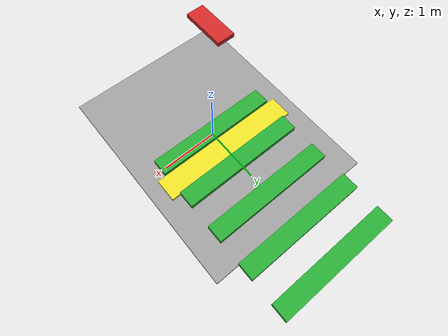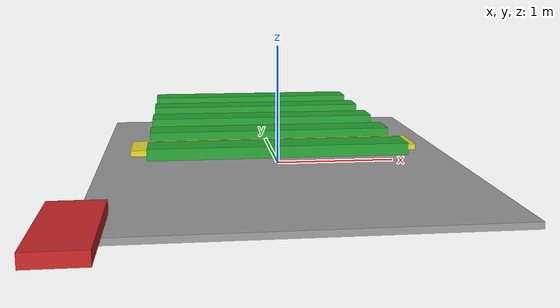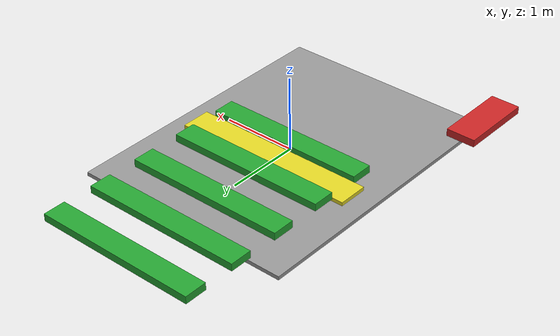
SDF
<?xml version="1.0"?>
<sdf version="1.7">
  <model name="field_model">
    <!-- 声明为静态模型，避免物理引擎计算，提高性能 -->
    <static>true</static>

    <!-- 1. 地面基底（灰色，作为整个场地的基础） -->
    <link name="ground">
      <pose>0 0 0 0 0 0</pose>  <!-- 位于坐标原点，z=0 贴合地面 -->
      <visual name="ground_visual">
        <geometry>
          <box>
            <size>3.0 3.9 0.05</size>
          </box>
        </geometry>
        <material>
          <script>
            <uri>file://media/materials/scripts/gazebo.material</uri>
            <name>Gazebo/Grey</name>  <!-- 浅灰色地面 -->
          </script>
        </material>
      </visual>
      <collision name="ground_collision">
        <geometry>
          <box>
            <size>3.0 3.9 0.05</size>  <!-- 碰撞体尺寸与视觉一致 -->
          </box>
        </geometry>
      </collision>
    </link>

    <!-- 2. 垄背（绿色，共5条，间距0.7m） -->
    <!-- 垄背1 -->
    <link name="ridge_1">
      <pose>0 0 0.125 0 0 0</pose>  <!-- z=0.125m，高于地面0.125m（地面厚0.05m + 悬空0.075m） -->
      <visual name="ridge_1_visual">
        <geometry>
          <box>
            <size>2.2 0.3 0.1</size>
          </box>
        </geometry>
        <material>
          <script>
            <uri>file://media/materials/scripts/gazebo.material</uri>
            <name>Gazebo/Green</name>  <!-- 绿色垄背 -->
          </script>
        </material>
      </visual>
      <collision name="ridge_1_collision">
        <geometry>
          <box>
            <size>2.2 0.3 0.1</size>  <!-- 碰撞体与视觉尺寸一致 -->
          </box>
        </geometry>
      </collision>
    </link>

    <!-- 垄背2（y方向偏移0.7m：垄背宽0.3m + 垄沟宽0.4m） -->
    <link name="ridge_2">
      <pose>0 0.7 0.125 0 0 0</pose>
      <visual name="ridge_2_visual">
        <geometry><box><size>2.2 0.3 0.1</size></box></geometry>
        <material><script><uri>file://media/materials/scripts/gazebo.material</uri><name>Gazebo/Green</name></script></material>
      </visual>
      <collision name="ridge_2_collision">
        <geometry><box><size>2.2 0.3 0.1</size></box></geometry>
      </collision>
    </link>

    <!-- 垄背3（y=0.7+0.7=1.4m） -->
    <link name="ridge_3">
      <pose>0 1.4 0.125 0 0 0</pose>
      <visual name="ridge_3_visual">
        <geometry><box><size>2.2 0.3 0.1</size></box></geometry>
        <material><script><uri>file://media/materials/scripts/gazebo.material</uri><name>Gazebo/Green</name></script></material>
      </visual>
      <collision name="ridge_3_collision">
        <geometry><box><size>2.2 0.3 0.1</size></box></geometry>
      </collision>
    </link>

    <!-- 垄背4（y=1.4+0.7=2.1m） -->
    <link name="ridge_4">
      <pose>0 2.1 0.125 0 0 0</pose>
      <visual name="ridge_4_visual">
        <geometry><box><size>2.2 0.3 0.1</size></box></geometry>
        <material><script><uri>file://media/materials/scripts/gazebo.material</uri><name>Gazebo/Green</name></script></material>
      </visual>
      <collision name="ridge_4_collision">
        <geometry><box><size>2.2 0.3 0.1</size></box></geometry>
      </collision>
    </link>

    <!-- 垄背5（y=2.1+0.7=2.8m） -->
    <link name="ridge_5">
      <pose>0 2.8 0.125 0 0 0</pose>
      <visual name="ridge_5_visual">
        <geometry><box><size>2.2 0.3 0.1</size></box></geometry>
        <material><script><uri>file://media/materials/scripts/gazebo.material</uri><name>Gazebo/Green</name></script></material>
      </visual>
      <collision name="ridge_5_collision">
        <geometry><box><size>2.2 0.3 0.1</size></box></geometry>
      </collision>
    </link>

    <!-- 3. 必走路径（黄色，位于垄背1和2之间） -->
    <link name="path">
      <pose>0 0.35 0.075 0 0 0</pose>  <!-- z=0.075m，略高于地面（地面厚0.05m + 0.025m） -->
      <visual name="path_visual">
        <geometry>
          <box>
            <size>2.5 0.4 0.05</size>  <!-- 长2.5m × 宽0.4m（垄沟宽度） × 厚0.05m -->
          </box>
        </geometry>
        <material>
          <script>
            <uri>file://media/materials/scripts/gazebo.material</uri>
            <name>Gazebo/Yellow</name>  <!-- 黄色路径，高对比度 -->
          </script>
        </material>
      </visual>
      <collision name="path_collision">
        <geometry>
          <box>
            <size>2.5 0.4 0.05</size>  <!-- 碰撞体与视觉尺寸一致 -->
          </box>
        </geometry>
      </collision>
    </link>

    <!-- 4. 比赛启动区（红色，位于场地左下角） -->
    <link name="start_area">
      <pose>-1.5 -1.95 0.075 0 0 0</pose>  <!-- x=-1.5m（地面左边界），y=-1.95m（地面下边界） -->
      <visual name="start_area_visual">
        <geometry>
          <box>
            <size>0.4 1.0 0.1</size>  <!-- 长0.4m × 宽1.0m × 高0.1m，突出显示 -->
          </box>
        </geometry>
        <material>
          <script>
            <uri>file://media/materials/scripts/gazebo.material</uri>
            <name>Gazebo/Red</name>  <!-- 红色启动区，醒目 -->
          </script>
        </material>
      </visual>
      <collision name="start_area_collision">
        <geometry>
          <box>
            <size>0.4 1.0 0.1</size>  <!-- 碰撞体与视觉尺寸一致 -->
          </box>
        </geometry>
      </collision>
    </link>

    <!-- 5. 固定所有部件（避免模型分散） -->
    <link name="link_fixed">
      <pose>0 0 0 0 0 0</pose>  <!-- 用于固定其他link的虚拟link -->
    </link>
    <!-- 将所有部件固定到虚拟link，确保模型整体不分散 -->
    <joint name="ground_fixed" type="fixed">
      <parent>link_fixed</parent>
      <child>ground</child>
    </joint>
    <joint name="ridge1_fixed" type="fixed">
      <parent>link_fixed</parent>
      <child>ridge_1</child>
    </joint>
    <joint name="ridge2_fixed" type="fixed">
      <parent>link_fixed</parent>
      <child>ridge_2</child>
    </joint>
    <joint name="ridge3_fixed" type="fixed">
      <parent>link_fixed</parent>
      <child>ridge_3</child>
    </joint>
    <joint name="ridge4_fixed" type="fixed">
      <parent>link_fixed</parent>
      <child>ridge_4</child>
    </joint>
    <joint name="ridge5_fixed" type="fixed">
      <parent>link_fixed</parent>
      <child>ridge_5</child>
    </joint>
    <joint name="path_fixed" type="fixed">
      <parent>link_fixed</parent>
      <child>path</child>
    </joint>
    <joint name="start_area_fixed" type="fixed">
      <parent>link_fixed</parent>
      <child>start_area</child>
    </joint>
  </model>
</sdf>
